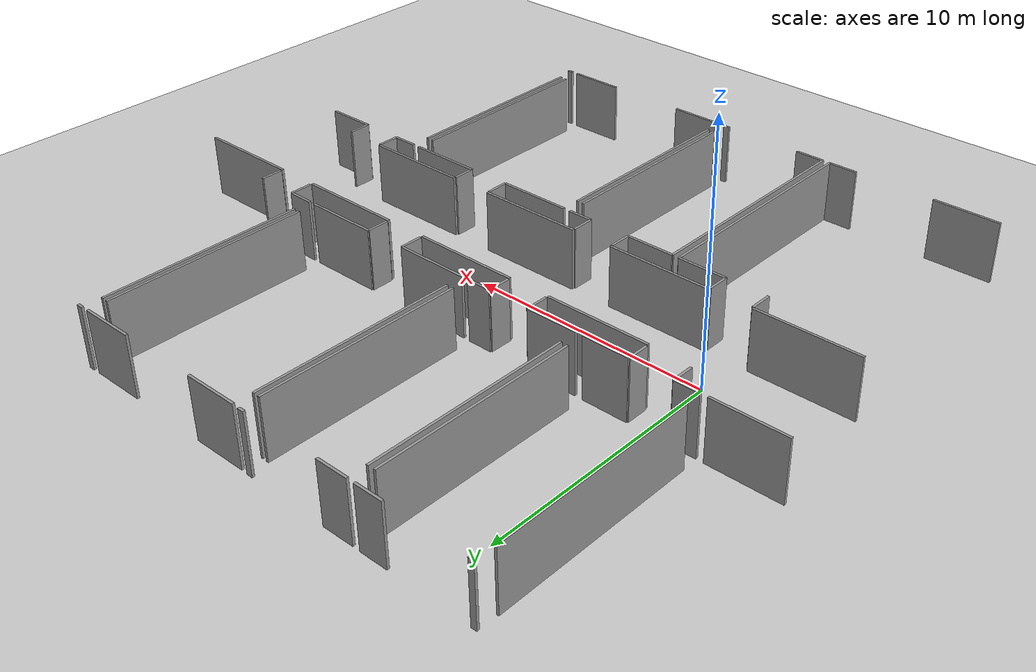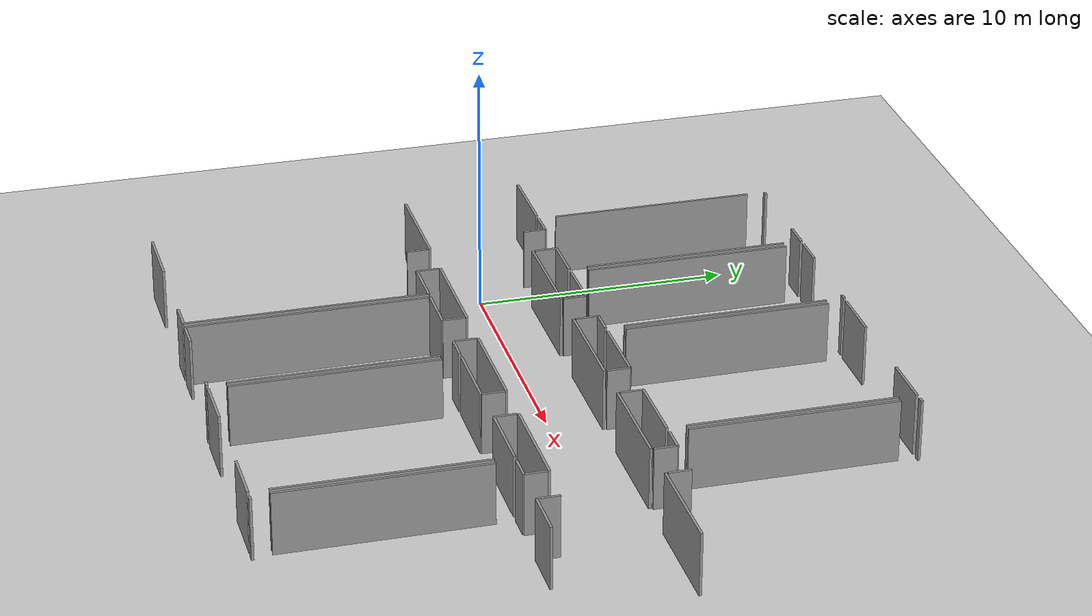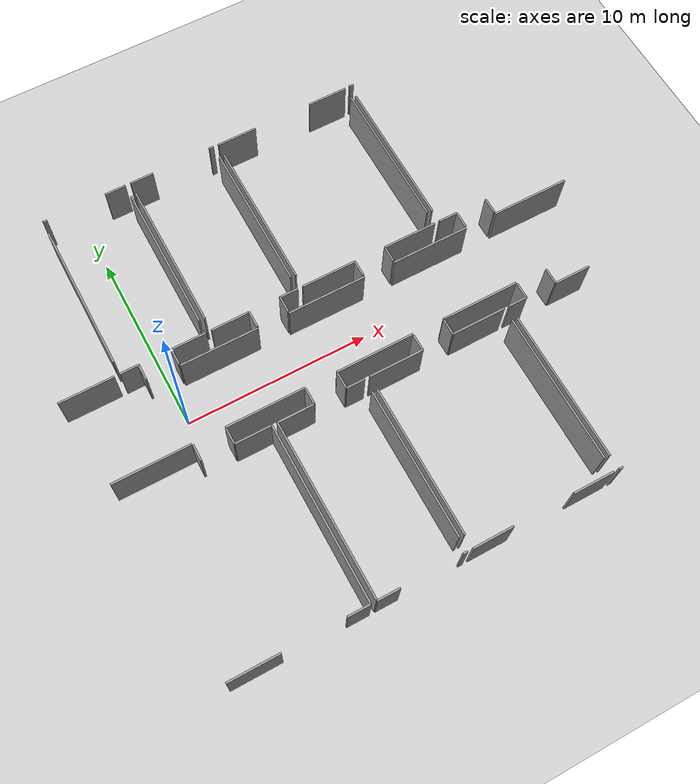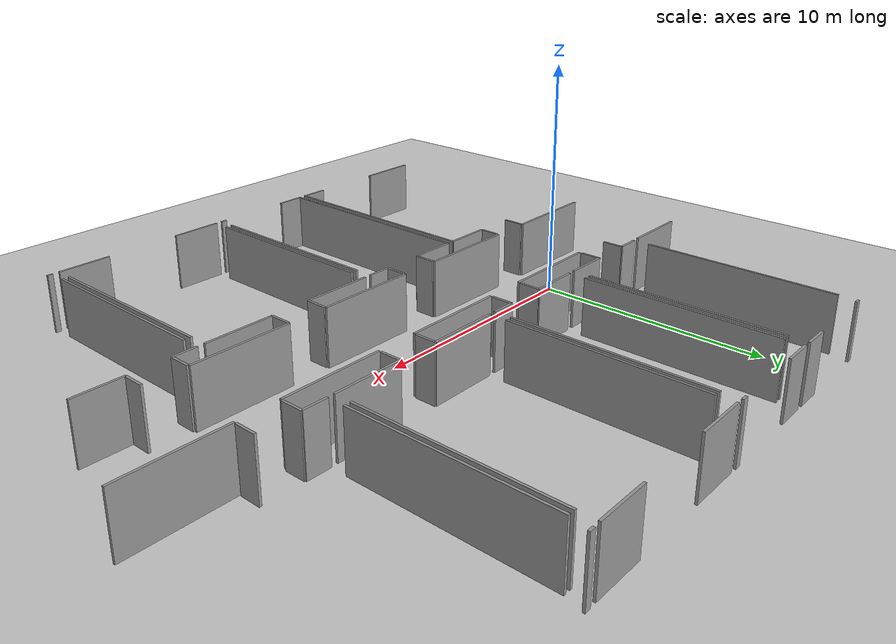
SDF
<sdf version="1.6">
 <world name="default">
  <model name="ground_plane">
   <static>1</static>
   <link name="link">
    <collision name="collision">
     <geometry><plane><normal>0 0 1</normal><size>100 100</size></plane></geometry>
     <surface><friction><ode><mu>100</mu><mu2>50</mu2></ode></friction></surface>
    </collision>
    <visual name="visual">
     <cast_shadows>0</cast_shadows>
     <geometry><plane><normal>0 0 1</normal><size>100 100</size></plane></geometry>
     <material>
      <script><uri>file://media/materials/scripts/gazebo.material</uri><name>Gazebo/Grey</name></script>
     </material>
    </visual>
   </link>
  </model>
  <model name="50052754">
   <static>1</static>
   <link name="Wall_98">
    <collision name="Wall_98_Collision">
     <geometry><box><size>4.24736124758 0.1 2.5</size></box></geometry>
     <pose>2.12368062379 0 1.25 0 0 0</pose>
    </collision>
    <visual name="Wall_98_Visual">
     <pose>2.12368062379 0 1.25 0 0 0</pose>
     <geometry><box><size>4.24736124758 0.1 2.5</size></box></geometry>
     <material>
      <script><uri>file://media/materials/scripts/gazebo.material</uri><name>Gazebo/Grey</name></script>
      <ambient>1 1 1 1</ambient>
     </material>
    </visual>
    <pose>39.7648102951 -10.5760562934 0 0 0 0.0</pose>
   </link>
   <link name="Wall_99">
    <collision name="Wall_99_Collision">
     <geometry><box><size>4.26003993787 0.1 2.5</size></box></geometry>
     <pose>2.13001996894 0 1.25 0 0 0</pose>
    </collision>
    <visual name="Wall_99_Visual">
     <pose>2.13001996894 0 1.25 0 0 0</pose>
     <geometry><box><size>4.26003993787 0.1 2.5</size></box></geometry>
     <material>
      <script><uri>file://media/materials/scripts/gazebo.material</uri><name>Gazebo/Grey</name></script>
      <ambient>1 1 1 1</ambient>
     </material>
    </visual>
    <pose>45.7364734223 -10.5760562934 0 0 0 0.0</pose>
   </link>
   <link name="Wall_100">
    <collision name="Wall_100_Collision">
     <geometry><box><size>4.24482550952 0.1 2.5</size></box></geometry>
     <pose>2.12241275476 0 1.25 0 0 0</pose>
    </collision>
    <visual name="Wall_100_Visual">
     <pose>2.12241275476 0 1.25 0 0 0</pose>
     <geometry><box><size>4.24482550952 0.1 2.5</size></box></geometry>
     <material>
      <script><uri>file://media/materials/scripts/gazebo.material</uri><name>Gazebo/Grey</name></script>
      <ambient>1 1 1 1</ambient>
     </material>
    </visual>
    <pose>51.7346350122 -10.5760562934 0 0 0 0.0</pose>
   </link>
   <link name="Wall_101">
    <collision name="Wall_101_Collision">
     <geometry><box><size>4.24698088687 0.1 2.5</size></box></geometry>
     <pose>2.12349044344 0 1.25 0 0 0</pose>
    </collision>
    <visual name="Wall_101_Visual">
     <pose>2.12349044344 0 1.25 0 0 0</pose>
     <geometry><box><size>4.24698088687 0.1 2.5</size></box></geometry>
     <material>
      <script><uri>file://media/materials/scripts/gazebo.material</uri><name>Gazebo/Grey</name></script>
      <ambient>1 1 1 1</ambient>
     </material>
    </visual>
    <pose>57.7339376842 -10.5760562934 0 0 0 0.0</pose>
   </link>
   <link name="Wall_109">
    <collision name="Wall_109_Collision">
     <geometry><box><size>4.22251101461 0.1 2.5</size></box></geometry>
     <pose>2.11125550731 0 1.25 0 0 0</pose>
    </collision>
    <visual name="Wall_109_Visual">
     <pose>2.11125550731 0 1.25 0 0 0</pose>
     <geometry><box><size>4.22251101461 0.1 2.5</size></box></geometry>
     <material>
      <script><uri>file://media/materials/scripts/gazebo.material</uri><name>Gazebo/Grey</name></script>
      <ambient>1 1 1 1</ambient>
     </material>
    </visual>
    <pose>56.5326317791 -14.470823164 0 0 0 3.14159265359</pose>
   </link>
   <link name="Wall_110">
    <collision name="Wall_110_Collision">
     <geometry><box><size>4.26118102 0.1 2.5</size></box></geometry>
     <pose>2.13059051 0 1.25 0 0 0</pose>
    </collision>
    <visual name="Wall_110_Visual">
     <pose>2.13059051 0 1.25 0 0 0</pose>
     <geometry><box><size>4.26118102 0.1 2.5</size></box></geometry>
     <material>
      <script><uri>file://media/materials/scripts/gazebo.material</uri><name>Gazebo/Grey</name></script>
      <ambient>1 1 1 1</ambient>
     </material>
    </visual>
    <pose>50.5605882912 -14.470823164 0 0 0 3.14159265359</pose>
   </link>
   <link name="Wall_111">
    <collision name="Wall_111_Collision">
     <geometry><box><size>4.26942216869 0.1 2.5</size></box></geometry>
     <pose>2.13471108434 0 1.25 0 0 0</pose>
    </collision>
    <visual name="Wall_111_Visual">
     <pose>2.13471108434 0 1.25 0 0 0</pose>
     <geometry><box><size>4.26942216869 0.1 2.5</size></box></geometry>
     <material>
      <script><uri>file://media/materials/scripts/gazebo.material</uri><name>Gazebo/Grey</name></script>
      <ambient>1 1 1 1</ambient>
     </material>
    </visual>
    <pose>44.561539193 -14.470823164 0 0 0 3.14159265359</pose>
   </link>
   <link name="Wall_112">
    <collision name="Wall_112_Collision">
     <geometry><box><size>4.2045072744 0.1 2.5</size></box></geometry>
     <pose>2.1022536372 0 1.25 0 0 0</pose>
    </collision>
    <visual name="Wall_112_Visual">
     <pose>2.1022536372 0 1.25 0 0 0</pose>
     <geometry><box><size>4.2045072744 0.1 2.5</size></box></geometry>
     <material>
      <script><uri>file://media/materials/scripts/gazebo.material</uri><name>Gazebo/Grey</name></script>
      <ambient>1 1 1 1</ambient>
     </material>
    </visual>
    <pose>38.533455894 -14.470823164 0 0 0 3.14159265359</pose>
   </link>
   <link name="Wall_127">
    <collision name="Wall_127_Collision">
     <geometry><box><size>2.96516529842 0.1 2.5</size></box></geometry>
     <pose>1.48258264921 0 1.25 0 0 0</pose>
    </collision>
    <visual name="Wall_127_Visual">
     <pose>1.48258264921 0 1.25 0 0 0</pose>
     <geometry><box><size>2.96516529842 0.1 2.5</size></box></geometry>
     <material>
      <script><uri>file://media/materials/scripts/gazebo.material</uri><name>Gazebo/Grey</name></script>
      <ambient>1 1 1 1</ambient>
     </material>
    </visual>
    <pose>36.7207835431 -9.59421851723 0 0 0 3.14159265359</pose>
   </link>
   <link name="Wall_131">
    <collision name="Wall_131_Collision">
     <geometry><box><size>8.13350660877 0.1 2.5</size></box></geometry>
     <pose>4.06675330438 0 1.25 0 0 0</pose>
    </collision>
    <visual name="Wall_131_Visual">
     <pose>4.06675330438 0 1.25 0 0 0</pose>
     <geometry><box><size>8.13350660877 0.1 2.5</size></box></geometry>
     <material>
      <script><uri>file://media/materials/scripts/gazebo.material</uri><name>Gazebo/Grey</name></script>
      <ambient>1 1 1 1</ambient>
     </material>
    </visual>
    <pose>37.001616533 -8.87964753241 0 0 0 1.57079632679</pose>
   </link>
   <link name="Wall_132">
    <collision name="Wall_132_Collision">
     <geometry><box><size>0.230498589496 0.1 2.5</size></box></geometry>
     <pose>0.115249294748 0 1.25 0 0 0</pose>
    </collision>
    <visual name="Wall_132_Visual">
     <pose>0.115249294748 0 1.25 0 0 0</pose>
     <geometry><box><size>0.230498589496 0.1 2.5</size></box></geometry>
     <material>
      <script><uri>file://media/materials/scripts/gazebo.material</uri><name>Gazebo/Grey</name></script>
      <ambient>1 1 1 1</ambient>
     </material>
    </visual>
    <pose>37.001616533 -0.0 0 0 0 0.0</pose>
   </link>
   <link name="Wall_133">
    <collision name="Wall_133_Collision">
     <geometry><box><size>1.14247678215 0.1 2.5</size></box></geometry>
     <pose>0.571238391074 0 1.25 0 0 0</pose>
    </collision>
    <visual name="Wall_133_Visual">
     <pose>0.571238391074 0 1.25 0 0 0</pose>
     <geometry><box><size>1.14247678215 0.1 2.5</size></box></geometry>
     <material>
      <script><uri>file://media/materials/scripts/gazebo.material</uri><name>Gazebo/Grey</name></script>
      <ambient>1 1 1 1</ambient>
     </material>
    </visual>
    <pose>40.4933278392 -0.0 0 0 0 0.0</pose>
   </link>
   <link name="Wall_134">
    <collision name="Wall_134_Collision">
     <geometry><box><size>8.11537608165 0.1 2.5</size></box></geometry>
     <pose>4.05768804083 0 1.25 0 0 0</pose>
    </collision>
    <visual name="Wall_134_Visual">
     <pose>4.05768804083 0 1.25 0 0 0</pose>
     <geometry><box><size>8.11537608165 0.1 2.5</size></box></geometry>
     <material>
      <script><uri>file://media/materials/scripts/gazebo.material</uri><name>Gazebo/Grey</name></script>
      <ambient>1 1 1 1</ambient>
     </material>
    </visual>
    <pose>41.6358046214 -0.73777298805 0 0 0 -1.57079632679</pose>
   </link>
   <link name="Wall_135">
    <collision name="Wall_135_Collision">
     <geometry><box><size>1.87353006434 0.1 2.5</size></box></geometry>
     <pose>0.936765032172 0 1.25 0 0 0</pose>
    </collision>
    <visual name="Wall_135_Visual">
     <pose>0.936765032172 0 1.25 0 0 0</pose>
     <geometry><box><size>1.87353006434 0.1 2.5</size></box></geometry>
     <material>
      <script><uri>file://media/materials/scripts/gazebo.material</uri><name>Gazebo/Grey</name></script>
      <ambient>1 1 1 1</ambient>
     </material>
    </visual>
    <pose>41.6358046214 -9.59916320644 0 0 0 3.14159265359</pose>
   </link>
   <link name="Wall_136">
    <collision name="Wall_136_Collision">
     <geometry><box><size>0.878633237187 0.1 2.5</size></box></geometry>
     <pose>0.439316618593 0 1.25 0 0 0</pose>
    </collision>
    <visual name="Wall_136_Visual">
     <pose>0.439316618593 0 1.25 0 0 0</pose>
     <geometry><box><size>0.878633237187 0.1 2.5</size></box></geometry>
     <material>
      <script><uri>file://media/materials/scripts/gazebo.material</uri><name>Gazebo/Grey</name></script>
      <ambient>1 1 1 1</ambient>
     </material>
    </visual>
    <pose>39.762274557 -9.59916320644 0 0 0 -1.57079632679</pose>
   </link>
   <link name="Wall_137">
    <collision name="Wall_137_Collision">
     <geometry><box><size>0.886367238264 0.1 2.5</size></box></geometry>
     <pose>0.443183619132 0 1.25 0 0 0</pose>
    </collision>
    <visual name="Wall_137_Visual">
     <pose>0.443183619132 0 1.25 0 0 0</pose>
     <geometry><box><size>0.886367238264 0.1 2.5</size></box></geometry>
     <material>
      <script><uri>file://media/materials/scripts/gazebo.material</uri><name>Gazebo/Grey</name></script>
      <ambient>1 1 1 1</ambient>
     </material>
    </visual>
    <pose>38.0132492314 -10.4777964436 0 0 0 1.57079632679</pose>
   </link>
   <link name="Wall_138">
    <collision name="Wall_138_Collision">
     <geometry><box><size>1.01165586581 0.1 2.5</size></box></geometry>
     <pose>0.505827932903 0 1.25 0 0 0</pose>
    </collision>
    <visual name="Wall_138_Visual">
     <pose>0.505827932903 0 1.25 0 0 0</pose>
     <geometry><box><size>1.01165586581 0.1 2.5</size></box></geometry>
     <material>
      <script><uri>file://media/materials/scripts/gazebo.material</uri><name>Gazebo/Grey</name></script>
      <ambient>1 1 1 1</ambient>
     </material>
    </visual>
    <pose>38.0132492314 -9.59142920536 0 0 0 -3.13482499153</pose>
   </link>
   <link name="Wall_139">
    <collision name="Wall_139_Collision">
     <geometry><box><size>8.14643887286 0.1 2.5</size></box></geometry>
     <pose>4.07321943643 0 1.25 0 0 0</pose>
    </collision>
    <visual name="Wall_139_Visual">
     <pose>4.07321943643 0 1.25 0 0 0</pose>
     <geometry><box><size>8.14643887286 0.1 2.5</size></box></geometry>
     <material>
      <script><uri>file://media/materials/scripts/gazebo.material</uri><name>Gazebo/Grey</name></script>
      <ambient>1 1 1 1</ambient>
     </material>
    </visual>
    <pose>41.9266537767 -8.87533677771 0 0 0 1.57079632679</pose>
   </link>
   <link name="Wall_140">
    <collision name="Wall_140_Collision">
     <geometry><box><size>1.30058005008 0.1 2.5</size></box></geometry>
     <pose>0.65029002504 0 1.25 0 0 0</pose>
    </collision>
    <visual name="Wall_140_Visual">
     <pose>0.65029002504 0 1.25 0 0 0</pose>
     <geometry><box><size>1.30058005008 0.1 2.5</size></box></geometry>
     <material>
      <script><uri>file://media/materials/scripts/gazebo.material</uri><name>Gazebo/Grey</name></script>
      <ambient>1 1 1 1</ambient>
     </material>
    </visual>
    <pose>41.9266537767 -0.00532504992234 0 0 0 0.0</pose>
   </link>
   <link name="Wall_141">
    <collision name="Wall_141_Collision">
     <geometry><box><size>0.261181020001 0.1 2.5</size></box></geometry>
     <pose>0.13059051 0 1.25 0 0 0</pose>
    </collision>
    <visual name="Wall_141_Visual">
     <pose>0.13059051 0 1.25 0 0 0</pose>
     <geometry><box><size>0.261181020001 0.1 2.5</size></box></geometry>
     <material>
      <script><uri>file://media/materials/scripts/gazebo.material</uri><name>Gazebo/Grey</name></script>
      <ambient>1 1 1 1</ambient>
     </material>
    </visual>
    <pose>46.4848965102 -0.00532504992234 0 0 0 0.0</pose>
   </link>
   <link name="Wall_142">
    <collision name="Wall_142_Collision">
     <geometry><box><size>8.12323686963 0.1 2.5</size></box></geometry>
     <pose>4.06161843482 0 1.25 0 0 0</pose>
    </collision>
    <visual name="Wall_142_Visual">
     <pose>4.06161843482 0 1.25 0 0 0</pose>
     <geometry><box><size>8.12323686963 0.1 2.5</size></box></geometry>
     <material>
      <script><uri>file://media/materials/scripts/gazebo.material</uri><name>Gazebo/Grey</name></script>
      <ambient>1 1 1 1</ambient>
     </material>
    </visual>
    <pose>46.7460775302 -0.73777298805 0 0 0 -1.57079632679</pose>
   </link>
   <link name="Wall_143">
    <collision name="Wall_143_Collision">
     <geometry><box><size>1.00453263178 0.1 2.5</size></box></geometry>
     <pose>0.50226631589 0 1.25 0 0 0</pose>
    </collision>
    <visual name="Wall_143_Visual">
     <pose>0.50226631589 0 1.25 0 0 0</pose>
     <geometry><box><size>1.00453263178 0.1 2.5</size></box></geometry>
     <material>
      <script><uri>file://media/materials/scripts/gazebo.material</uri><name>Gazebo/Grey</name></script>
      <ambient>1 1 1 1</ambient>
     </material>
    </visual>
    <pose>46.7460775302 -9.58597736854 0 0 0 3.14159265359</pose>
   </link>
   <link name="Wall_144">
    <collision name="Wall_144_Collision">
     <geometry><box><size>0.904751339187 0.1 2.5</size></box></geometry>
     <pose>0.452375669593 0 1.25 0 0 0</pose>
    </collision>
    <visual name="Wall_144_Visual">
     <pose>0.452375669593 0 1.25 0 0 0</pose>
     <geometry><box><size>0.904751339187 0.1 2.5</size></box></geometry>
     <material>
      <script><uri>file://media/materials/scripts/gazebo.material</uri><name>Gazebo/Grey</name></script>
      <ambient>1 1 1 1</ambient>
     </material>
    </visual>
    <pose>45.7415448984 -9.58597736854 0 0 0 -1.57079632679</pose>
   </link>
   <link name="Wall_145">
    <collision name="Wall_145_Collision">
     <geometry><box><size>0.901328092808 0.1 2.5</size></box></geometry>
     <pose>0.450664046404 0 1.25 0 0 0</pose>
    </collision>
    <visual name="Wall_145_Visual">
     <pose>0.450664046404 0 1.25 0 0 0</pose>
     <geometry><box><size>0.901328092808 0.1 2.5</size></box></geometry>
     <material>
      <script><uri>file://media/materials/scripts/gazebo.material</uri><name>Gazebo/Grey</name></script>
      <ambient>1 1 1 1</ambient>
     </material>
    </visual>
    <pose>44.0181305271 -10.4907287077 0 0 0 1.57079632679</pose>
   </link>
   <link name="Wall_146">
    <collision name="Wall_146_Collision">
     <geometry><box><size>2.09150451565 0.1 2.5</size></box></geometry>
     <pose>1.04575225782 0 1.25 0 0 0</pose>
    </collision>
    <visual name="Wall_146_Visual">
     <pose>1.04575225782 0 1.25 0 0 0</pose>
     <geometry><box><size>2.09150451565 0.1 2.5</size></box></geometry>
     <material>
      <script><uri>file://media/materials/scripts/gazebo.material</uri><name>Gazebo/Grey</name></script>
      <ambient>1 1 1 1</ambient>
     </material>
    </visual>
    <pose>44.0181305271 -9.58940061492 0 0 0 -3.13643993489</pose>
   </link>
   <link name="Wall_147">
    <collision name="Wall_147_Collision">
     <geometry><box><size>8.11715109829 0.1 2.5</size></box></geometry>
     <pose>4.05857554915 0 1.25 0 0 0</pose>
    </collision>
    <visual name="Wall_147_Visual">
     <pose>4.05857554915 0 1.25 0 0 0</pose>
     <geometry><box><size>8.11715109829 0.1 2.5</size></box></geometry>
     <material>
      <script><uri>file://media/materials/scripts/gazebo.material</uri><name>Gazebo/Grey</name></script>
      <ambient>1 1 1 1</ambient>
     </material>
    </visual>
    <pose>47.0147389775 -8.86329202193 0 0 0 1.57079632679</pose>
   </link>
   <link name="Wall_148">
    <collision name="Wall_148_Collision">
     <geometry><box><size>2.20571174998 0.1 2.5</size></box></geometry>
     <pose>1.10285587499 0 1.25 0 0 0</pose>
    </collision>
    <visual name="Wall_148_Visual">
     <pose>1.10285587499 0 1.25 0 0 0</pose>
     <geometry><box><size>2.20571174998 0.1 2.5</size></box></geometry>
     <material>
      <script><uri>file://media/materials/scripts/gazebo.material</uri><name>Gazebo/Grey</name></script>
      <ambient>1 1 1 1</ambient>
     </material>
    </visual>
    <pose>47.0147389775 -0.0290342007671 0 0 0 0.0</pose>
   </link>
   <link name="Wall_149">
    <collision name="Wall_149_Collision">
     <geometry><box><size>2.20089384767 0.1 2.5</size></box></geometry>
     <pose>1.10044692383 0 1.25 0 0 0</pose>
    </collision>
    <visual name="Wall_149_Visual">
     <pose>1.10044692383 0 1.25 0 0 0</pose>
     <geometry><box><size>2.20089384767 0.1 2.5</size></box></geometry>
     <material>
      <script><uri>file://media/materials/scripts/gazebo.material</uri><name>Gazebo/Grey</name></script>
      <ambient>1 1 1 1</ambient>
     </material>
    </visual>
    <pose>52.4905385274 -0.0290342007671 0 0 0 0.0</pose>
   </link>
   <link name="Wall_150">
    <collision name="Wall_150_Collision">
     <geometry><box><size>8.12298329583 0.1 2.5</size></box></geometry>
     <pose>4.06149164791 0 1.25 0 0 0</pose>
    </collision>
    <visual name="Wall_150_Visual">
     <pose>4.06149164791 0 1.25 0 0 0</pose>
     <geometry><box><size>8.12298329583 0.1 2.5</size></box></geometry>
     <material>
      <script><uri>file://media/materials/scripts/gazebo.material</uri><name>Gazebo/Grey</name></script>
      <ambient>1 1 1 1</ambient>
     </material>
    </visual>
    <pose>54.691432375 -0.73777298805 0 0 0 -1.57079632679</pose>
   </link>
   <link name="Wall_151">
    <collision name="Wall_151_Collision">
     <geometry><box><size>2.94982408317 0.1 2.5</size></box></geometry>
     <pose>1.47491204159 0 1.25 0 0 0</pose>
    </collision>
    <visual name="Wall_151_Visual">
     <pose>1.47491204159 0 1.25 0 0 0</pose>
     <geometry><box><size>2.94982408317 0.1 2.5</size></box></geometry>
     <material>
      <script><uri>file://media/materials/scripts/gazebo.material</uri><name>Gazebo/Grey</name></script>
      <ambient>1 1 1 1</ambient>
     </material>
    </visual>
    <pose>54.691432375 -9.59193635297 0 0 0 3.14159265359</pose>
   </link>
   <link name="Wall_152">
    <collision name="Wall_152_Collision">
     <geometry><box><size>0.887635107293 0.1 2.5</size></box></geometry>
     <pose>0.443817553647 0 1.25 0 0 0</pose>
    </collision>
    <visual name="Wall_152_Visual">
     <pose>0.443817553647 0 1.25 0 0 0</pose>
     <geometry><box><size>0.887635107293 0.1 2.5</size></box></geometry>
     <material>
      <script><uri>file://media/materials/scripts/gazebo.material</uri><name>Gazebo/Grey</name></script>
      <ambient>1 1 1 1</ambient>
     </material>
    </visual>
    <pose>51.7416082919 -9.59193635297 0 0 0 -1.57079632679</pose>
   </link>
   <link name="Wall_153">
    <collision name="Wall_153_Collision">
     <geometry><box><size>0.893847665536 0.1 2.5</size></box></geometry>
     <pose>0.446923832768 0 1.25 0 0 0</pose>
    </collision>
    <visual name="Wall_153_Visual">
     <pose>0.446923832768 0 1.25 0 0 0</pose>
     <geometry><box><size>0.893847665536 0.1 2.5</size></box></geometry>
     <material>
      <script><uri>file://media/materials/scripts/gazebo.material</uri><name>Gazebo/Grey</name></script>
      <ambient>1 1 1 1</ambient>
     </material>
    </visual>
    <pose>50.0020919839 -10.4795714603 0 0 0 1.57079632679</pose>
   </link>
   <link name="Wall_154">
    <collision name="Wall_154_Collision">
     <geometry><box><size>2.98736028153 0.1 2.5</size></box></geometry>
     <pose>1.49368014076 0 1.25 0 0 0</pose>
    </collision>
    <visual name="Wall_154_Visual">
     <pose>1.49368014076 0 1.25 0 0 0</pose>
     <geometry><box><size>2.98736028153 0.1 2.5</size></box></geometry>
     <material>
      <script><uri>file://media/materials/scripts/gazebo.material</uri><name>Gazebo/Grey</name></script>
      <ambient>1 1 1 1</ambient>
     </material>
    </visual>
    <pose>50.0020919839 -9.58572379473 0 0 0 -3.13938571379</pose>
   </link>
   <link name="Wall_155">
    <collision name="Wall_155_Collision">
     <geometry><box><size>8.12095470538 0.1 2.5</size></box></geometry>
     <pose>4.06047735269 0 1.25 0 0 0</pose>
    </collision>
    <visual name="Wall_155_Visual">
     <pose>4.06047735269 0 1.25 0 0 0</pose>
     <geometry><box><size>8.12095470538 0.1 2.5</size></box></geometry>
     <material>
      <script><uri>file://media/materials/scripts/gazebo.material</uri><name>Gazebo/Grey</name></script>
      <ambient>1 1 1 1</ambient>
     </material>
    </visual>
    <pose>54.960474183 -8.86709562902 0 0 0 1.57079632679</pose>
   </link>
   <link name="Wall_156">
    <collision name="Wall_156_Collision">
     <geometry><box><size>0.241909410758 0.1 2.5</size></box></geometry>
     <pose>0.120954705379 0 1.25 0 0 0</pose>
    </collision>
    <visual name="Wall_156_Visual">
     <pose>0.120954705379 0 1.25 0 0 0</pose>
     <geometry><box><size>0.241909410758 0.1 2.5</size></box></geometry>
     <material>
      <script><uri>file://media/materials/scripts/gazebo.material</uri><name>Gazebo/Grey</name></script>
      <ambient>1 1 1 1</ambient>
     </material>
    </visual>
    <pose>54.960474183 -0.0124251164855 0 0 0 0.0</pose>
   </link>
   <link name="Wall_160">
    <collision name="Wall_160_Collision">
     <geometry><box><size>0.873688547973 0.1 2.5</size></box></geometry>
     <pose>0.436844273986 0 1.25 0 0 0</pose>
    </collision>
    <visual name="Wall_160_Visual">
     <pose>0.436844273986 0 1.25 0 0 0</pose>
     <geometry><box><size>0.873688547973 0.1 2.5</size></box></geometry>
     <material>
      <script><uri>file://media/materials/scripts/gazebo.material</uri><name>Gazebo/Grey</name></script>
      <ambient>1 1 1 1</ambient>
     </material>
    </visual>
    <pose>57.7388823735 -9.60841865035 0 0 0 -1.57079632679</pose>
   </link>
   <link name="Wall_161">
    <collision name="Wall_161_Collision">
     <geometry><box><size>0.886874385876 0.1 2.5</size></box></geometry>
     <pose>0.443437192938 0 1.25 0 0 0</pose>
    </collision>
    <visual name="Wall_161_Visual">
     <pose>0.443437192938 0 1.25 0 0 0</pose>
     <geometry><box><size>0.886874385876 0.1 2.5</size></box></geometry>
     <material>
      <script><uri>file://media/materials/scripts/gazebo.material</uri><name>Gazebo/Grey</name></script>
      <ambient>1 1 1 1</ambient>
     </material>
    </visual>
    <pose>56.0015214428 -10.4821071983 0 0 0 1.57079632679</pose>
   </link>
   <link name="Wall_162">
    <collision name="Wall_162_Collision">
     <geometry><box><size>1.04109068702 0.1 2.5</size></box></geometry>
     <pose>0.520545343508 0 1.25 0 0 0</pose>
    </collision>
    <visual name="Wall_162_Visual">
     <pose>0.520545343508 0 1.25 0 0 0</pose>
     <geometry><box><size>1.04109068702 0.1 2.5</size></box></geometry>
     <material>
      <script><uri>file://media/materials/scripts/gazebo.material</uri><name>Gazebo/Grey</name></script>
      <ambient>1 1 1 1</ambient>
     </material>
    </visual>
    <pose>56.0015214428 -9.59523281245 0 0 0 3.13245881918</pose>
   </link>
   <link name="Wall_214">
    <collision name="Wall_214_Collision">
     <geometry><box><size>8.10599385084 0.1 2.5</size></box></geometry>
     <pose>4.05299692542 0 1.25 0 0 0</pose>
    </collision>
    <visual name="Wall_214_Visual">
     <pose>4.05299692542 0 1.25 0 0 0</pose>
     <geometry><box><size>8.10599385084 0.1 2.5</size></box></geometry>
     <material>
      <script><uri>file://media/materials/scripts/gazebo.material</uri><name>Gazebo/Grey</name></script>
      <ambient>1 1 1 1</ambient>
     </material>
    </visual>
    <pose>55.5403974769 -24.272972202 0 0 0 1.57079632679</pose>
   </link>
   <link name="Wall_215">
    <collision name="Wall_215_Collision">
     <geometry><box><size>1.00808266506 0.1 2.5</size></box></geometry>
     <pose>0.50404133253 0 1.25 0 0 0</pose>
    </collision>
    <visual name="Wall_215_Visual">
     <pose>0.50404133253 0 1.25 0 0 0</pose>
     <geometry><box><size>1.00808266506 0.1 2.5</size></box></geometry>
     <material>
      <script><uri>file://media/materials/scripts/gazebo.material</uri><name>Gazebo/Grey</name></script>
      <ambient>1 1 1 1</ambient>
     </material>
    </visual>
    <pose>55.5403974769 -15.4091730324 0 0 0 0.0</pose>
   </link>
   <link name="Wall_216">
    <collision name="Wall_216_Collision">
     <geometry><box><size>0.872293892041 0.1 2.5</size></box></geometry>
     <pose>0.43614694602 0 1.25 0 0 0</pose>
    </collision>
    <visual name="Wall_216_Visual">
     <pose>0.43614694602 0 1.25 0 0 0</pose>
     <geometry><box><size>0.872293892041 0.1 2.5</size></box></geometry>
     <material>
      <script><uri>file://media/materials/scripts/gazebo.material</uri><name>Gazebo/Grey</name></script>
      <ambient>1 1 1 1</ambient>
     </material>
    </visual>
    <pose>56.548480142 -15.4091730324 0 0 0 1.57079632679</pose>
   </link>
   <link name="Wall_217">
    <collision name="Wall_217_Collision">
     <geometry><box><size>0.884338647818 0.1 2.5</size></box></geometry>
     <pose>0.442169323909 0 1.25 0 0 0</pose>
    </collision>
    <visual name="Wall_217_Visual">
     <pose>0.442169323909 0 1.25 0 0 0</pose>
     <geometry><box><size>0.884338647818 0.1 2.5</size></box></geometry>
     <material>
      <script><uri>file://media/materials/scripts/gazebo.material</uri><name>Gazebo/Grey</name></script>
      <ambient>1 1 1 1</ambient>
     </material>
    </visual>
    <pose>58.2732891692 -14.5368791404 0 0 0 -1.57079632679</pose>
   </link>
   <link name="Wall_218">
    <collision name="Wall_218_Collision">
     <geometry><box><size>1.9976544423 0.1 2.5</size></box></geometry>
     <pose>0.998827221148 0 1.25 0 0 0</pose>
    </collision>
    <visual name="Wall_218_Visual">
     <pose>0.998827221148 0 1.25 0 0 0</pose>
     <geometry><box><size>1.9976544423 0.1 2.5</size></box></geometry>
     <material>
      <script><uri>file://media/materials/scripts/gazebo.material</uri><name>Gazebo/Grey</name></script>
      <ambient>1 1 1 1</ambient>
     </material>
    </visual>
    <pose>58.2732891692 -15.4212177882 0 0 0 0.0</pose>
   </link>
   <link name="Wall_221">
    <collision name="Wall_221_Collision">
     <geometry><box><size>0.22168152474 0.1 2.5</size></box></geometry>
     <pose>0.11084076237 0 1.25 0 0 0</pose>
    </collision>
    <visual name="Wall_221_Visual">
     <pose>0.11084076237 0 1.25 0 0 0</pose>
     <geometry><box><size>0.22168152474 0.1 2.5</size></box></geometry>
     <material>
      <script><uri>file://media/materials/scripts/gazebo.material</uri><name>Gazebo/Grey</name></script>
      <ambient>1 1 1 1</ambient>
     </material>
    </visual>
    <pose>55.7620209832 -25.0117594852 0 0 0 -3.11871335138</pose>
   </link>
   <link name="Wall_222">
    <collision name="Wall_222_Collision">
     <geometry><box><size>8.12285650892 0.1 2.5</size></box></geometry>
     <pose>4.06142825446 0 1.25 0 0 0</pose>
    </collision>
    <visual name="Wall_222_Visual">
     <pose>4.06142825446 0 1.25 0 0 0</pose>
     <geometry><box><size>8.12285650892 0.1 2.5</size></box></geometry>
     <material>
      <script><uri>file://media/materials/scripts/gazebo.material</uri><name>Gazebo/Grey</name></script>
      <ambient>1 1 1 1</ambient>
     </material>
    </visual>
    <pose>47.584772893 -24.2932581064 0 0 0 1.57079632679</pose>
   </link>
   <link name="Wall_223">
    <collision name="Wall_223_Collision">
     <geometry><box><size>2.9685885448 0.1 2.5</size></box></geometry>
     <pose>1.4842942724 0 1.25 0 0 0</pose>
    </collision>
    <visual name="Wall_223_Visual">
     <pose>1.4842942724 0 1.25 0 0 0</pose>
     <geometry><box><size>2.9685885448 0.1 2.5</size></box></geometry>
     <material>
      <script><uri>file://media/materials/scripts/gazebo.material</uri><name>Gazebo/Grey</name></script>
      <ambient>1 1 1 1</ambient>
     </material>
    </visual>
    <pose>47.584772893 -15.4351643475 0 0 0 0.0</pose>
   </link>
   <link name="Wall_224">
    <collision name="Wall_224_Collision">
     <geometry><box><size>0.903990617769 0.1 2.5</size></box></geometry>
     <pose>0.451995308885 0 1.25 0 0 0</pose>
    </collision>
    <visual name="Wall_224_Visual">
     <pose>0.451995308885 0 1.25 0 0 0</pose>
     <geometry><box><size>0.903990617769 0.1 2.5</size></box></geometry>
     <material>
      <script><uri>file://media/materials/scripts/gazebo.material</uri><name>Gazebo/Grey</name></script>
      <ambient>1 1 1 1</ambient>
     </material>
    </visual>
    <pose>50.5533614378 -15.4351643475 0 0 0 1.57079632679</pose>
   </link>
   <link name="Wall_225">
    <collision name="Wall_225_Collision">
     <geometry><box><size>0.874702843196 0.1 2.5</size></box></geometry>
     <pose>0.437351421598 0 1.25 0 0 0</pose>
    </collision>
    <visual name="Wall_225_Visual">
     <pose>0.437351421598 0 1.25 0 0 0</pose>
     <geometry><box><size>0.874702843196 0.1 2.5</size></box></geometry>
     <material>
      <script><uri>file://media/materials/scripts/gazebo.material</uri><name>Gazebo/Grey</name></script>
      <ambient>1 1 1 1</ambient>
     </material>
    </visual>
    <pose>52.2968081397 -14.5311737298 0 0 0 -1.57079632679</pose>
   </link>
   <link name="Wall_226">
    <collision name="Wall_226_Collision">
     <geometry><box><size>2.96237598656 0.1 2.5</size></box></geometry>
     <pose>1.48118799328 0 1.25 0 0 0</pose>
    </collision>
    <visual name="Wall_226_Visual">
     <pose>1.48118799328 0 1.25 0 0 0</pose>
     <geometry><box><size>2.96237598656 0.1 2.5</size></box></geometry>
     <material>
      <script><uri>file://media/materials/scripts/gazebo.material</uri><name>Gazebo/Grey</name></script>
      <ambient>1 1 1 1</ambient>
     </material>
    </visual>
    <pose>52.2968081397 -15.405876573 0 0 0 0.0</pose>
   </link>
   <link name="Wall_227">
    <collision name="Wall_227_Collision">
     <geometry><box><size>8.10599385084 0.1 2.5</size></box></geometry>
     <pose>4.05299692542 0 1.25 0 0 0</pose>
    </collision>
    <visual name="Wall_227_Visual">
     <pose>4.05299692542 0 1.25 0 0 0</pose>
     <geometry><box><size>8.10599385084 0.1 2.5</size></box></geometry>
     <material>
      <script><uri>file://media/materials/scripts/gazebo.material</uri><name>Gazebo/Grey</name></script>
      <ambient>1 1 1 1</ambient>
     </material>
    </visual>
    <pose>55.2591841263 -16.1518907097 0 0 0 -1.57079632679</pose>
   </link>
   <link name="Wall_228">
    <collision name="Wall_228_Collision">
     <geometry><box><size>2.22827981869 0.1 2.5</size></box></geometry>
     <pose>1.11413990935 0 1.25 0 0 0</pose>
    </collision>
    <visual name="Wall_228_Visual">
     <pose>1.11413990935 0 1.25 0 0 0</pose>
     <geometry><box><size>2.22827981869 0.1 2.5</size></box></geometry>
     <material>
      <script><uri>file://media/materials/scripts/gazebo.material</uri><name>Gazebo/Grey</name></script>
      <ambient>1 1 1 1</ambient>
     </material>
    </visual>
    <pose>55.2591841263 -25.0087165996 0 0 0 3.14159265359</pose>
   </link>
   <link name="Wall_229">
    <collision name="Wall_229_Collision">
     <geometry><box><size>2.18582126763 0.1 2.5</size></box></geometry>
     <pose>1.09291063381 0 1.25 0 0 0</pose>
    </collision>
    <visual name="Wall_229_Visual">
     <pose>1.09291063381 0 1.25 0 0 0</pose>
     <geometry><box><size>2.18582126763 0.1 2.5</size></box></geometry>
     <material>
      <script><uri>file://media/materials/scripts/gazebo.material</uri><name>Gazebo/Grey</name></script>
      <ambient>1 1 1 1</ambient>
     </material>
    </visual>
    <pose>49.7705790992 -25.0087165996 0 0 0 -3.13788037366</pose>
   </link>
   <link name="Wall_230">
    <collision name="Wall_230_Collision">
     <geometry><box><size>1.20396843006 0.1 2.5</size></box></geometry>
     <pose>0.601984215031 0 1.25 0 0 0</pose>
    </collision>
    <visual name="Wall_230_Visual">
     <pose>0.601984215031 0 1.25 0 0 0</pose>
     <geometry><box><size>1.20396843006 0.1 2.5</size></box></geometry>
     <material>
      <script><uri>file://media/materials/scripts/gazebo.material</uri><name>Gazebo/Grey</name></script>
      <ambient>1 1 1 1</ambient>
     </material>
    </visual>
    <pose>42.5929189515 -25.0104916162 0 0 0 0.0</pose>
   </link>
   <link name="Wall_231">
    <collision name="Wall_231_Collision">
     <geometry><box><size>0.252179149894 0.1 2.5</size></box></geometry>
     <pose>0.126089574947 0 1.25 0 0 0</pose>
    </collision>
    <visual name="Wall_231_Visual">
     <pose>0.126089574947 0 1.25 0 0 0</pose>
     <geometry><box><size>0.252179149894 0.1 2.5</size></box></geometry>
     <material>
      <script><uri>file://media/materials/scripts/gazebo.material</uri><name>Gazebo/Grey</name></script>
      <ambient>1 1 1 1</ambient>
     </material>
    </visual>
    <pose>47.055817934 -25.0104916162 0 0 0 0.0</pose>
   </link>
   <link name="Wall_232">
    <collision name="Wall_232_Collision">
     <geometry><box><size>8.11702431139 0.1 2.5</size></box></geometry>
     <pose>4.05851215569 0 1.25 0 0 0</pose>
    </collision>
    <visual name="Wall_232_Visual">
     <pose>4.05851215569 0 1.25 0 0 0</pose>
     <geometry><box><size>8.11702431139 0.1 2.5</size></box></geometry>
     <material>
      <script><uri>file://media/materials/scripts/gazebo.material</uri><name>Gazebo/Grey</name></script>
      <ambient>1 1 1 1</ambient>
     </material>
    </visual>
    <pose>47.3079970839 -24.2855241054 0 0 0 1.57079632679</pose>
   </link>
   <link name="Wall_233">
    <collision name="Wall_233_Collision">
     <geometry><box><size>1.0054201401 0.1 2.5</size></box></geometry>
     <pose>0.50271007005 0 1.25 0 0 0</pose>
    </collision>
    <visual name="Wall_233_Visual">
     <pose>0.50271007005 0 1.25 0 0 0</pose>
     <geometry><box><size>1.0054201401 0.1 2.5</size></box></geometry>
     <material>
      <script><uri>file://media/materials/scripts/gazebo.material</uri><name>Gazebo/Grey</name></script>
      <ambient>1 1 1 1</ambient>
     </material>
    </visual>
    <pose>47.3079970839 -15.4349107737 0 0 0 3.14159265359</pose>
   </link>
   <link name="Wall_234">
    <collision name="Wall_234_Collision">
     <geometry><box><size>0.90361025706 0.1 2.5</size></box></geometry>
     <pose>0.45180512853 0 1.25 0 0 0</pose>
    </collision>
    <visual name="Wall_234_Visual">
     <pose>0.45180512853 0 1.25 0 0 0</pose>
     <geometry><box><size>0.90361025706 0.1 2.5</size></box></geometry>
     <material>
      <script><uri>file://media/materials/scripts/gazebo.material</uri><name>Gazebo/Grey</name></script>
      <ambient>1 1 1 1</ambient>
     </material>
    </visual>
    <pose>46.3025769438 -15.4349107737 0 0 0 1.57079632679</pose>
   </link>
   <link name="Wall_235">
    <collision name="Wall_235_Collision">
     <geometry><box><size>0.896890551206 0.1 2.5</size></box></geometry>
     <pose>0.448445275603 0 1.25 0 0 0</pose>
    </collision>
    <visual name="Wall_235_Visual">
     <pose>0.448445275603 0 1.25 0 0 0</pose>
     <geometry><box><size>0.896890551206 0.1 2.5</size></box></geometry>
     <material>
      <script><uri>file://media/materials/scripts/gazebo.material</uri><name>Gazebo/Grey</name></script>
      <ambient>1 1 1 1</ambient>
     </material>
    </visual>
    <pose>44.5609052585 -14.5313005167 0 0 0 -1.57079632679</pose>
   </link>
   <link name="Wall_236">
    <collision name="Wall_236_Collision">
     <geometry><box><size>1.98751149006 0.1 2.5</size></box></geometry>
     <pose>0.993755745032 0 1.25 0 0 0</pose>
    </collision>
    <visual name="Wall_236_Visual">
     <pose>0.993755745032 0 1.25 0 0 0</pose>
     <geometry><box><size>1.98751149006 0.1 2.5</size></box></geometry>
     <material>
      <script><uri>file://media/materials/scripts/gazebo.material</uri><name>Gazebo/Grey</name></script>
      <ambient>1 1 1 1</ambient>
     </material>
    </visual>
    <pose>44.5609052585 -15.4281910679 0 0 0 3.14159265359</pose>
   </link>
   <link name="Wall_237">
    <collision name="Wall_237_Collision">
     <geometry><box><size>9.58232044088 0.1 2.5</size></box></geometry>
     <pose>4.79116022044 0 1.25 0 0 0</pose>
    </collision>
    <visual name="Wall_237_Visual">
     <pose>4.79116022044 0 1.25 0 0 0</pose>
     <geometry><box><size>9.58232044088 0.1 2.5</size></box></geometry>
     <material>
      <script><uri>file://media/materials/scripts/gazebo.material</uri><name>Gazebo/Grey</name></script>
      <ambient>1 1 1 1</ambient>
     </material>
    </visual>
    <pose>42.5733937684 -15.4281910679 0 0 0 -1.56875869962</pose>
   </link>
   <link name="Wall_243">
    <collision name="Wall_243_Collision">
     <geometry><box><size>0.888142254905 0.1 2.5</size></box></geometry>
     <pose>0.444071127453 0 1.25 0 0 0</pose>
    </collision>
    <visual name="Wall_243_Visual">
     <pose>0.444071127453 0 1.25 0 0 0</pose>
     <geometry><box><size>0.888142254905 0.1 2.5</size></box></geometry>
     <material>
      <script><uri>file://media/materials/scripts/gazebo.material</uri><name>Gazebo/Grey</name></script>
      <ambient>1 1 1 1</ambient>
     </material>
    </visual>
    <pose>38.5570382579 -15.413610574 0 0 0 1.57079632679</pose>
   </link>
   <link name="Wall_244">
    <collision name="Wall_244_Collision">
     <geometry><box><size>0.893213731022 0.1 2.5</size></box></geometry>
     <pose>0.446606865511 0 1.25 0 0 0</pose>
    </collision>
    <visual name="Wall_244_Visual">
     <pose>0.446606865511 0 1.25 0 0 0</pose>
     <geometry><box><size>0.893213731022 0.1 2.5</size></box></geometry>
     <material>
      <script><uri>file://media/materials/scripts/gazebo.material</uri><name>Gazebo/Grey</name></script>
      <ambient>1 1 1 1</ambient>
     </material>
    </visual>
    <pose>40.2950331231 -14.5254683191 0 0 0 -1.57079632679</pose>
   </link>
   <link name="Wall_245">
    <collision name="Wall_245_Collision">
     <geometry><box><size>1.98282037466 0.1 2.5</size></box></geometry>
     <pose>0.991410187328 0 1.25 0 0 0</pose>
    </collision>
    <visual name="Wall_245_Visual">
     <pose>0.991410187328 0 1.25 0 0 0</pose>
     <geometry><box><size>1.98282037466 0.1 2.5</size></box></geometry>
     <material>
      <script><uri>file://media/materials/scripts/gazebo.material</uri><name>Gazebo/Grey</name></script>
      <ambient>1 1 1 1</ambient>
     </material>
    </visual>
    <pose>40.2950331231 -15.4186820501 0 0 0 0.0</pose>
   </link>
   <link name="Wall_246">
    <collision name="Wall_246_Collision">
     <geometry><box><size>9.59003454943 0.1 2.5</size></box></geometry>
     <pose>4.79501727472 0 1.25 0 0 0</pose>
    </collision>
    <visual name="Wall_246_Visual">
     <pose>4.79501727472 0 1.25 0 0 0</pose>
     <geometry><box><size>9.59003454943 0.1 2.5</size></box></geometry>
     <material>
      <script><uri>file://media/materials/scripts/gazebo.material</uri><name>Gazebo/Grey</name></script>
      <ambient>1 1 1 1</ambient>
     </material>
    </visual>
    <pose>42.2778534977 -15.4186820501 0 0 0 -1.57079632679</pose>
   </link>
   <link name="Wall_247">
    <collision name="Wall_247_Collision">
     <geometry><box><size>1.19636121589 0.1 2.5</size></box></geometry>
     <pose>0.598180607943 0 1.25 0 0 0</pose>
    </collision>
    <visual name="Wall_247_Visual">
     <pose>0.598180607943 0 1.25 0 0 0</pose>
     <geometry><box><size>1.19636121589 0.1 2.5</size></box></geometry>
     <material>
      <script><uri>file://media/materials/scripts/gazebo.material</uri><name>Gazebo/Grey</name></script>
      <ambient>1 1 1 1</ambient>
     </material>
    </visual>
    <pose>42.2778534977 -25.0087165996 0 0 0 3.14159265359</pose>
   </link>
   <link name="Wall_248">
    <collision name="Wall_248_Collision">
     <geometry><box><size>2.70246283559 0.1 2.5</size></box></geometry>
     <pose>1.35123141779 0 1.25 0 0 0</pose>
    </collision>
    <visual name="Wall_248_Visual">
     <pose>1.35123141779 0 1.25 0 0 0</pose>
     <geometry><box><size>2.70246283559 0.1 2.5</size></box></geometry>
     <material>
      <script><uri>file://media/materials/scripts/gazebo.material</uri><name>Gazebo/Grey</name></script>
      <ambient>1 1 1 1</ambient>
     </material>
    </visual>
    <pose>37.7831310026 -25.0087165996 0 0 0 3.14159265359</pose>
   </link>
   <pose>-39.0 12.5388918825 0 0 0 0</pose>
  </model>
 </world>
</sdf>
